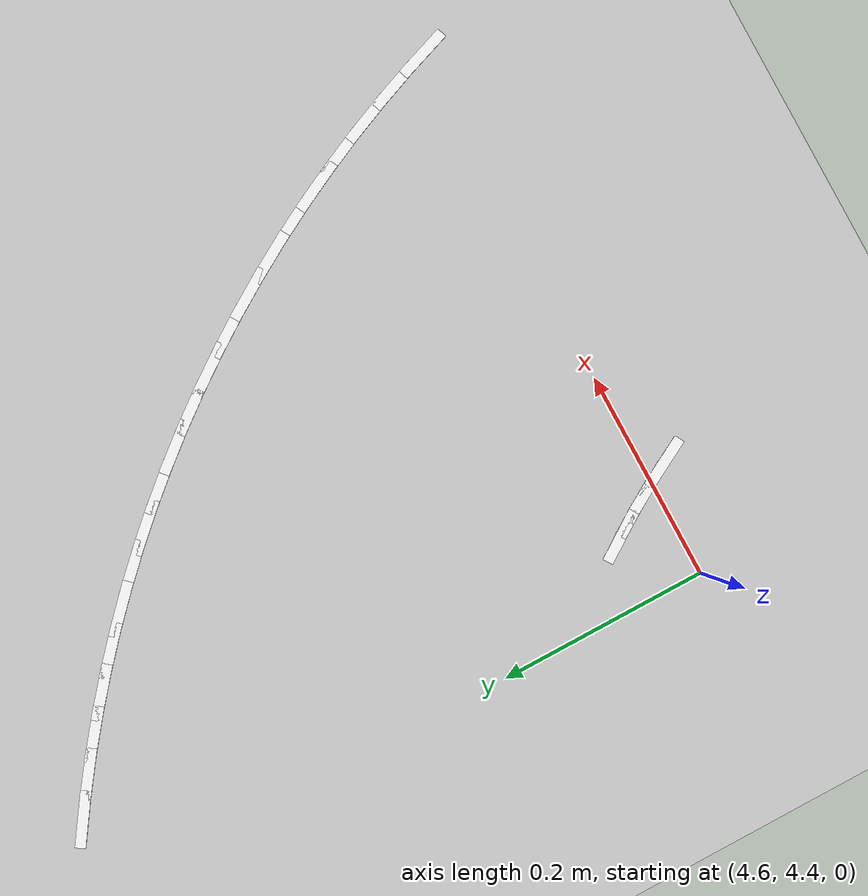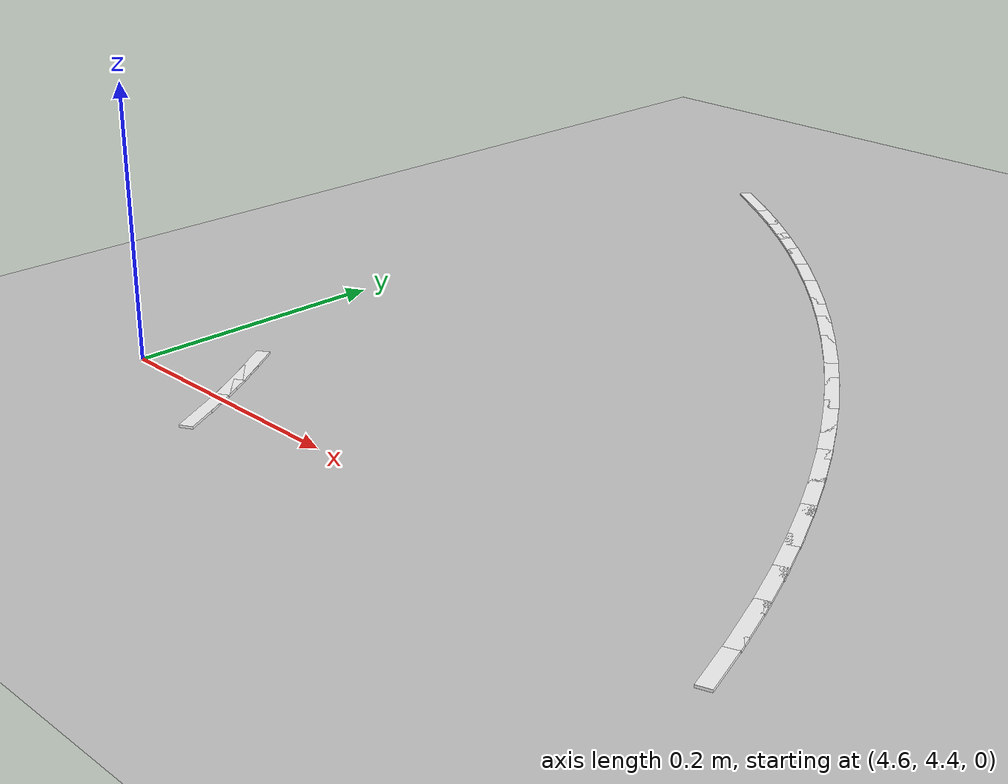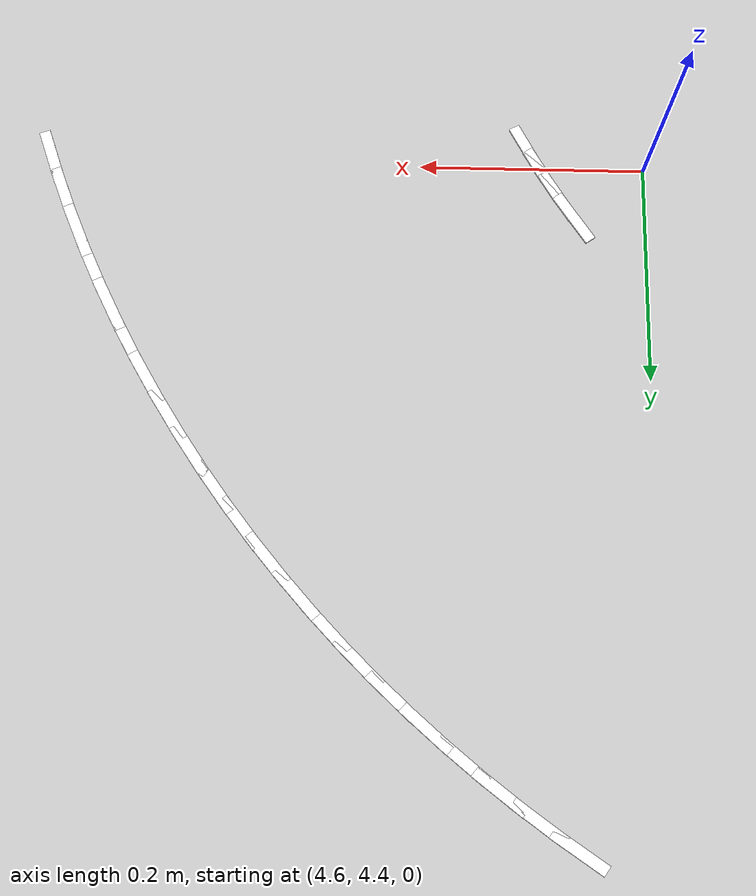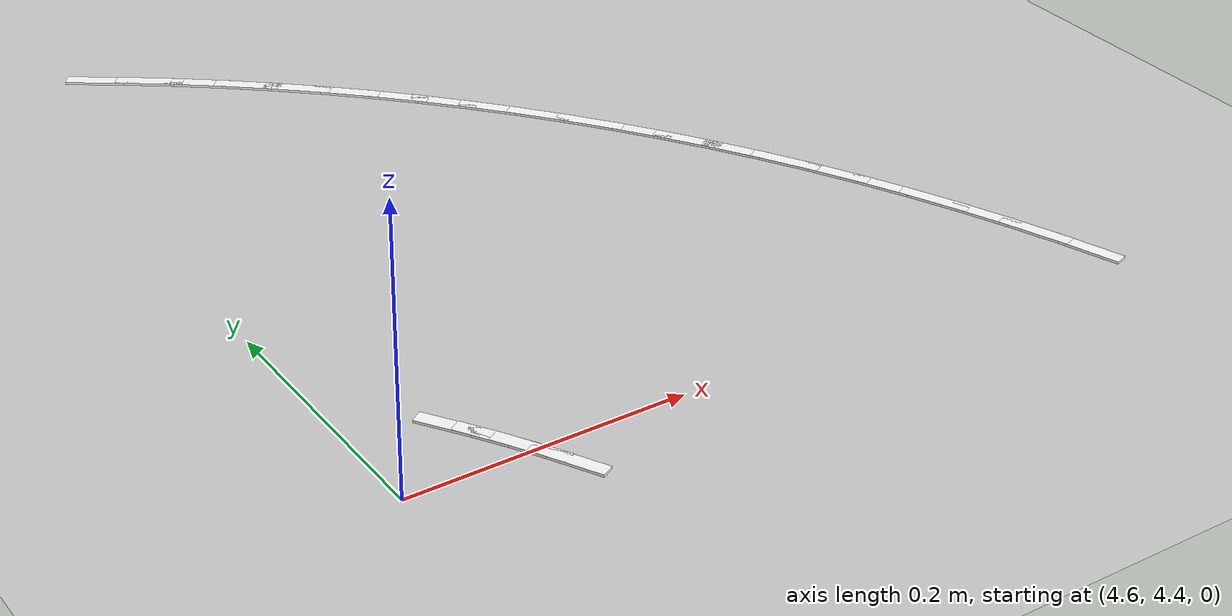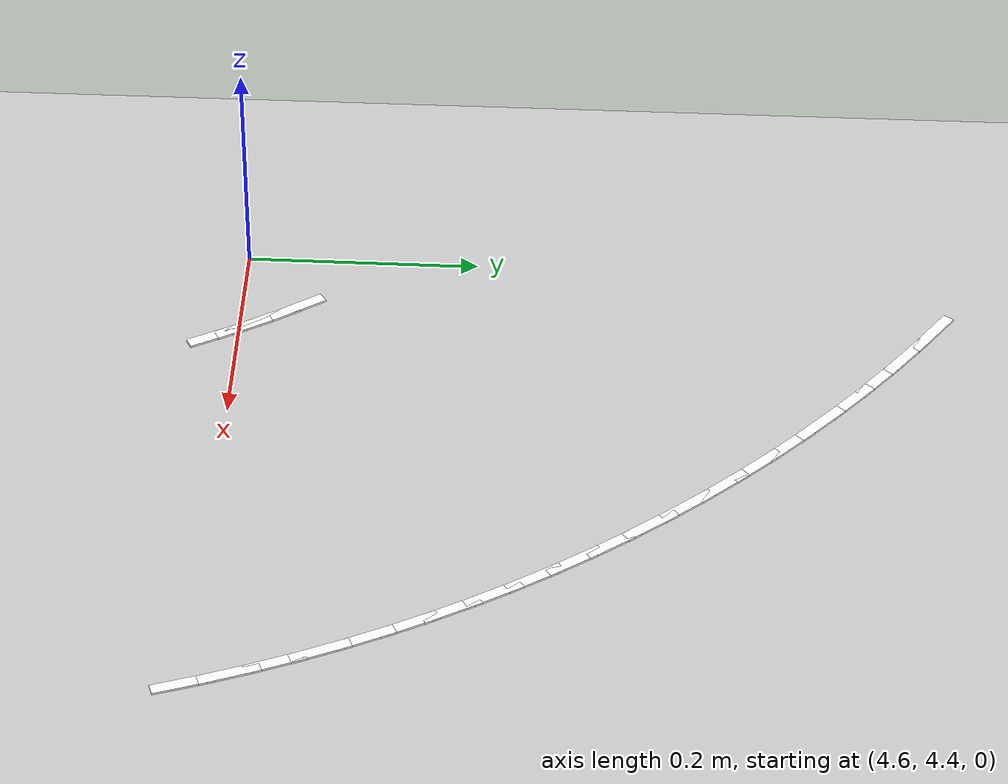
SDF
<sdf version="1.7">
 <world name="default">
  <model name="ground_plane">
   <static>1</static>
   <link name="link">
    <collision name="collision">
     <geometry><plane><normal>0 0 1</normal><size>100 100</size></plane></geometry>
     <surface>
      <contact><collide_bitmask>65535</collide_bitmask></contact>
      <friction><ode><mu>100</mu><mu2>50</mu2></ode></friction>
     </surface>
    </collision>
    <visual name="visual">
     <cast_shadows>0</cast_shadows>
     <geometry><plane><normal>0 0 1</normal><size>100 100</size></plane></geometry>
     <material>
      <script><uri>file://media/materials/scripts/gazebo.material</uri><name>Gazebo/Grey</name></script>
     </material>
    </visual>
   </link>
  </model>
  <model name="lane_line_right_160">
   <static>1</static>
   <link name="link">
    <pose>0 0 -0.004 0 -0 0</pose>
    <visual name="visual">
     <geometry><box><size>0.0521 0.01 0.01</size></box></geometry>
     <material><ambient>1 1 1 1</ambient><diffuse>1 1 1 1</diffuse></material>
    </visual>
    <collision name="collision"><geometry><box><size>0.0521 0.01 0.01</size></box></geometry></collision>
   </link>
   <pose>5.13254 4.39629 0 0 -0 1.9074</pose>
  </model>
  <model name="lane_line_right_161">
   <static>1</static>
   <link name="link">
    <pose>0 0 -0.004 0 -0 0</pose>
    <visual name="visual">
     <geometry><box><size>0.0521 0.01 0.01</size></box></geometry>
     <material><ambient>1 1 1 1</ambient><diffuse>1 1 1 1</diffuse></material>
    </visual>
    <collision name="collision"><geometry><box><size>0.0521 0.01 0.01</size></box></geometry></collision>
   </link>
   <pose>5.11926 4.43239 0 0 -0 1.93945</pose>
  </model>
  <model name="lane_line_right_162">
   <static>1</static>
   <link name="link">
    <pose>0 0 -0.004 0 -0 0</pose>
    <visual name="visual">
     <geometry><box><size>0.0521 0.01 0.01</size></box></geometry>
     <material><ambient>1 1 1 1</ambient><diffuse>1 1 1 1</diffuse></material>
    </visual>
    <collision name="collision"><geometry><box><size>0.0521 0.01 0.01</size></box></geometry></collision>
   </link>
   <pose>5.10482 4.46804 0 0 -0 1.97151</pose>
  </model>
  <model name="lane_line_right_163">
   <static>1</static>
   <link name="link">
    <pose>0 0 -0.004 0 -0 0</pose>
    <visual name="visual">
     <geometry><box><size>0.0521 0.01 0.01</size></box></geometry>
     <material><ambient>1 1 1 1</ambient><diffuse>1 1 1 1</diffuse></material>
    </visual>
    <collision name="collision"><geometry><box><size>0.0521 0.01 0.01</size></box></geometry></collision>
   </link>
   <pose>5.08925 4.50321 0 0 -0 2.00357</pose>
  </model>
  <model name="lane_line_right_164">
   <static>1</static>
   <link name="link">
    <pose>0 0 -0.004 0 -0 0</pose>
    <visual name="visual">
     <geometry><box><size>0.0521 0.01 0.01</size></box></geometry>
     <material><ambient>1 1 1 1</ambient><diffuse>1 1 1 1</diffuse></material>
    </visual>
    <collision name="collision"><geometry><box><size>0.0521 0.01 0.01</size></box></geometry></collision>
   </link>
   <pose>5.07256 4.53786 0 0 -0 2.03562</pose>
  </model>
  <model name="lane_line_left_165">
   <static>1</static>
   <link name="link">
    <pose>0 0 -0.004 0 -0 0</pose>
    <visual name="visual">
     <geometry><box><size>0.0521 0.01 0.01</size></box></geometry>
     <material><ambient>1 1 1 1</ambient><diffuse>1 1 1 1</diffuse></material>
    </visual>
    <collision name="collision"><geometry><box><size>0.0521 0.01 0.01</size></box></geometry></collision>
   </link>
   <pose>4.70314 4.38129 0 0 -0 2.06768</pose>
  </model>
  <model name="lane_line_right_165">
   <static>1</static>
   <link name="link">
    <pose>0 0 -0.004 0 -0 0</pose>
    <visual name="visual">
     <geometry><box><size>0.0521 0.01 0.01</size></box></geometry>
     <material><ambient>1 1 1 1</ambient><diffuse>1 1 1 1</diffuse></material>
    </visual>
    <collision name="collision"><geometry><box><size>0.0521 0.01 0.01</size></box></geometry></collision>
   </link>
   <pose>5.05477 4.57197 0 0 -0 2.06768</pose>
  </model>
  <model name="lane_line_left_166">
   <static>1</static>
   <link name="link">
    <pose>0 0 -0.004 0 -0 0</pose>
    <visual name="visual">
     <geometry><box><size>0.0521 0.01 0.01</size></box></geometry>
     <material><ambient>1 1 1 1</ambient><diffuse>1 1 1 1</diffuse></material>
    </visual>
    <collision name="collision"><geometry><box><size>0.0521 0.01 0.01</size></box></geometry></collision>
   </link>
   <pose>4.69056 4.40363 0 0 -0 2.09974</pose>
  </model>
  <model name="lane_line_right_166">
   <static>1</static>
   <link name="link">
    <pose>0 0 -0.004 0 -0 0</pose>
    <visual name="visual">
     <geometry><box><size>0.0521 0.01 0.01</size></box></geometry>
     <material><ambient>1 1 1 1</ambient><diffuse>1 1 1 1</diffuse></material>
    </visual>
    <collision name="collision"><geometry><box><size>0.0521 0.01 0.01</size></box></geometry></collision>
   </link>
   <pose>5.0359 4.60548 0 0 -0 2.09974</pose>
  </model>
  <model name="lane_line_left_167">
   <static>1</static>
   <link name="link">
    <pose>0 0 -0.004 0 -0 0</pose>
    <visual name="visual">
     <geometry><box><size>0.0521 0.01 0.01</size></box></geometry>
     <material><ambient>1 1 1 1</ambient><diffuse>1 1 1 1</diffuse></material>
    </visual>
    <collision name="collision"><geometry><box><size>0.0521 0.01 0.01</size></box></geometry></collision>
   </link>
   <pose>4.67727 4.42556 0 0 -0 2.1318</pose>
  </model>
  <model name="lane_line_right_167">
   <static>1</static>
   <link name="link">
    <pose>0 0 -0.004 0 -0 0</pose>
    <visual name="visual">
     <geometry><box><size>0.0521 0.01 0.01</size></box></geometry>
     <material><ambient>1 1 1 1</ambient><diffuse>1 1 1 1</diffuse></material>
    </visual>
    <collision name="collision"><geometry><box><size>0.0521 0.01 0.01</size></box></geometry></collision>
   </link>
   <pose>5.01596 4.63837 0 0 -0 2.1318</pose>
  </model>
  <model name="lane_line_left_168">
   <static>1</static>
   <link name="link">
    <pose>0 0 -0.004 0 -0 0</pose>
    <visual name="visual">
     <geometry><box><size>0.0521 0.01 0.01</size></box></geometry>
     <material><ambient>1 1 1 1</ambient><diffuse>1 1 1 1</diffuse></material>
    </visual>
    <collision name="collision"><geometry><box><size>0.0521 0.01 0.01</size></box></geometry></collision>
   </link>
   <pose>4.66328 4.44705 0 0 -0 2.16385</pose>
  </model>
  <model name="lane_line_right_168">
   <static>1</static>
   <link name="link">
    <pose>0 0 -0.004 0 -0 0</pose>
    <visual name="visual">
     <geometry><box><size>0.0521 0.01 0.01</size></box></geometry>
     <material><ambient>1 1 1 1</ambient><diffuse>1 1 1 1</diffuse></material>
    </visual>
    <collision name="collision"><geometry><box><size>0.0521 0.01 0.01</size></box></geometry></collision>
   </link>
   <pose>4.99498 4.67061 0 0 -0 2.16385</pose>
  </model>
  <model name="lane_line_right_169">
   <static>1</static>
   <link name="link">
    <pose>0 0 -0.004 0 -0 0</pose>
    <visual name="visual">
     <geometry><box><size>0.0521 0.01 0.01</size></box></geometry>
     <material><ambient>1 1 1 1</ambient><diffuse>1 1 1 1</diffuse></material>
    </visual>
    <collision name="collision"><geometry><box><size>0.0521 0.01 0.01</size></box></geometry></collision>
   </link>
   <pose>4.97297 4.70215 0 0 -0 2.19591</pose>
  </model>
  <model name="lane_line_right_170">
   <static>1</static>
   <link name="link">
    <pose>0 0 -0.004 0 -0 0</pose>
    <visual name="visual">
     <geometry><box><size>0.0521 0.01 0.01</size></box></geometry>
     <material><ambient>1 1 1 1</ambient><diffuse>1 1 1 1</diffuse></material>
    </visual>
    <collision name="collision"><geometry><box><size>0.0521 0.01 0.01</size></box></geometry></collision>
   </link>
   <pose>4.94997 4.73298 0 0 -0 2.22797</pose>
  </model>
  <model name="lane_line_right_171">
   <static>1</static>
   <link name="link">
    <pose>0 0 -0.004 0 -0 0</pose>
    <visual name="visual">
     <geometry><box><size>0.0521 0.01 0.01</size></box></geometry>
     <material><ambient>1 1 1 1</ambient><diffuse>1 1 1 1</diffuse></material>
    </visual>
    <collision name="collision"><geometry><box><size>0.0521 0.01 0.01</size></box></geometry></collision>
   </link>
   <pose>4.92599 4.76305 0 0 -0 2.26002</pose>
  </model>
  <model name="lane_line_right_172">
   <static>1</static>
   <link name="link">
    <pose>0 0 -0.004 0 -0 0</pose>
    <visual name="visual">
     <geometry><box><size>0.0521 0.01 0.01</size></box></geometry>
     <material><ambient>1 1 1 1</ambient><diffuse>1 1 1 1</diffuse></material>
    </visual>
    <collision name="collision"><geometry><box><size>0.0521 0.01 0.01</size></box></geometry></collision>
   </link>
   <pose>4.90105 4.79233 0 0 -0 2.29208</pose>
  </model>
  <model name="lane_line_right_173">
   <static>1</static>
   <link name="link">
    <pose>0 0 -0.004 0 -0 0</pose>
    <visual name="visual">
     <geometry><box><size>0.0521 0.01 0.01</size></box></geometry>
     <material><ambient>1 1 1 1</ambient><diffuse>1 1 1 1</diffuse></material>
    </visual>
    <collision name="collision"><geometry><box><size>0.0521 0.01 0.01</size></box></geometry></collision>
   </link>
   <pose>4.8752 4.82081 0 0 -0 2.32414</pose>
  </model>
  <model name="lane_line_right_174">
   <static>1</static>
   <link name="link">
    <pose>0 0 -0.004 0 -0 0</pose>
    <visual name="visual">
     <geometry><box><size>0.0521 0.01 0.01</size></box></geometry>
     <material><ambient>1 1 1 1</ambient><diffuse>1 1 1 1</diffuse></material>
    </visual>
    <collision name="collision"><geometry><box><size>0.0521 0.01 0.01</size></box></geometry></collision>
   </link>
   <pose>4.84844 4.84844 0 0 -0 2.35619</pose>
  </model>
  <model name="lane_line_right_175">
   <static>1</static>
   <link name="link">
    <pose>0 0 -0.004 0 -0 0</pose>
    <visual name="visual">
     <geometry><box><size>0.0521 0.01 0.01</size></box></geometry>
     <material><ambient>1 1 1 1</ambient><diffuse>1 1 1 1</diffuse></material>
    </visual>
    <collision name="collision"><geometry><box><size>0.0521 0.01 0.01</size></box></geometry></collision>
   </link>
   <pose>4.82081 4.8752 0 0 -0 2.38825</pose>
  </model>
  <model name="lane_line_right_176">
   <static>1</static>
   <link name="link">
    <pose>0 0 -0.004 0 -0 0</pose>
    <visual name="visual">
     <geometry><box><size>0.0521 0.01 0.01</size></box></geometry>
     <material><ambient>1 1 1 1</ambient><diffuse>1 1 1 1</diffuse></material>
    </visual>
    <collision name="collision"><geometry><box><size>0.0521 0.01 0.01</size></box></geometry></collision>
   </link>
   <pose>4.79233 4.90105 0 0 -0 2.42031</pose>
  </model>
  <model name="lane_line_right_177">
   <static>1</static>
   <link name="link">
    <pose>0 0 -0.004 0 -0 0</pose>
    <visual name="visual">
     <geometry><box><size>0.0521 0.01 0.01</size></box></geometry>
     <material><ambient>1 1 1 1</ambient><diffuse>1 1 1 1</diffuse></material>
    </visual>
    <collision name="collision"><geometry><box><size>0.0521 0.01 0.01</size></box></geometry></collision>
   </link>
   <pose>4.76305 4.92599 0 0 -0 2.45237</pose>
  </model>
  <model name="lane_line_right_178">
   <static>1</static>
   <link name="link">
    <pose>0 0 -0.004 0 -0 0</pose>
    <visual name="visual">
     <geometry><box><size>0.0521 0.01 0.01</size></box></geometry>
     <material><ambient>1 1 1 1</ambient><diffuse>1 1 1 1</diffuse></material>
    </visual>
    <collision name="collision"><geometry><box><size>0.0521 0.01 0.01</size></box></geometry></collision>
   </link>
   <pose>4.73298 4.94997 0 0 -0 2.48442</pose>
  </model>
  <model name="lane_line_right_179">
   <static>1</static>
   <link name="link">
    <pose>0 0 -0.004 0 -0 0</pose>
    <visual name="visual">
     <geometry><box><size>0.0521 0.01 0.01</size></box></geometry>
     <material><ambient>1 1 1 1</ambient><diffuse>1 1 1 1</diffuse></material>
    </visual>
    <collision name="collision"><geometry><box><size>0.0521 0.01 0.01</size></box></geometry></collision>
   </link>
   <pose>4.70215 4.97297 0 0 -0 2.51648</pose>
  </model>
  <model name="lane_line_right_180">
   <static>1</static>
   <link name="link">
    <pose>0 0 -0.004 0 -0 0</pose>
    <visual name="visual">
     <geometry><box><size>0.0521 0.01 0.01</size></box></geometry>
     <material><ambient>1 1 1 1</ambient><diffuse>1 1 1 1</diffuse></material>
    </visual>
    <collision name="collision"><geometry><box><size>0.0521 0.01 0.01</size></box></geometry></collision>
   </link>
   <pose>4.67061 4.99498 0 0 -0 2.54854</pose>
  </model>
 </world>
</sdf>
